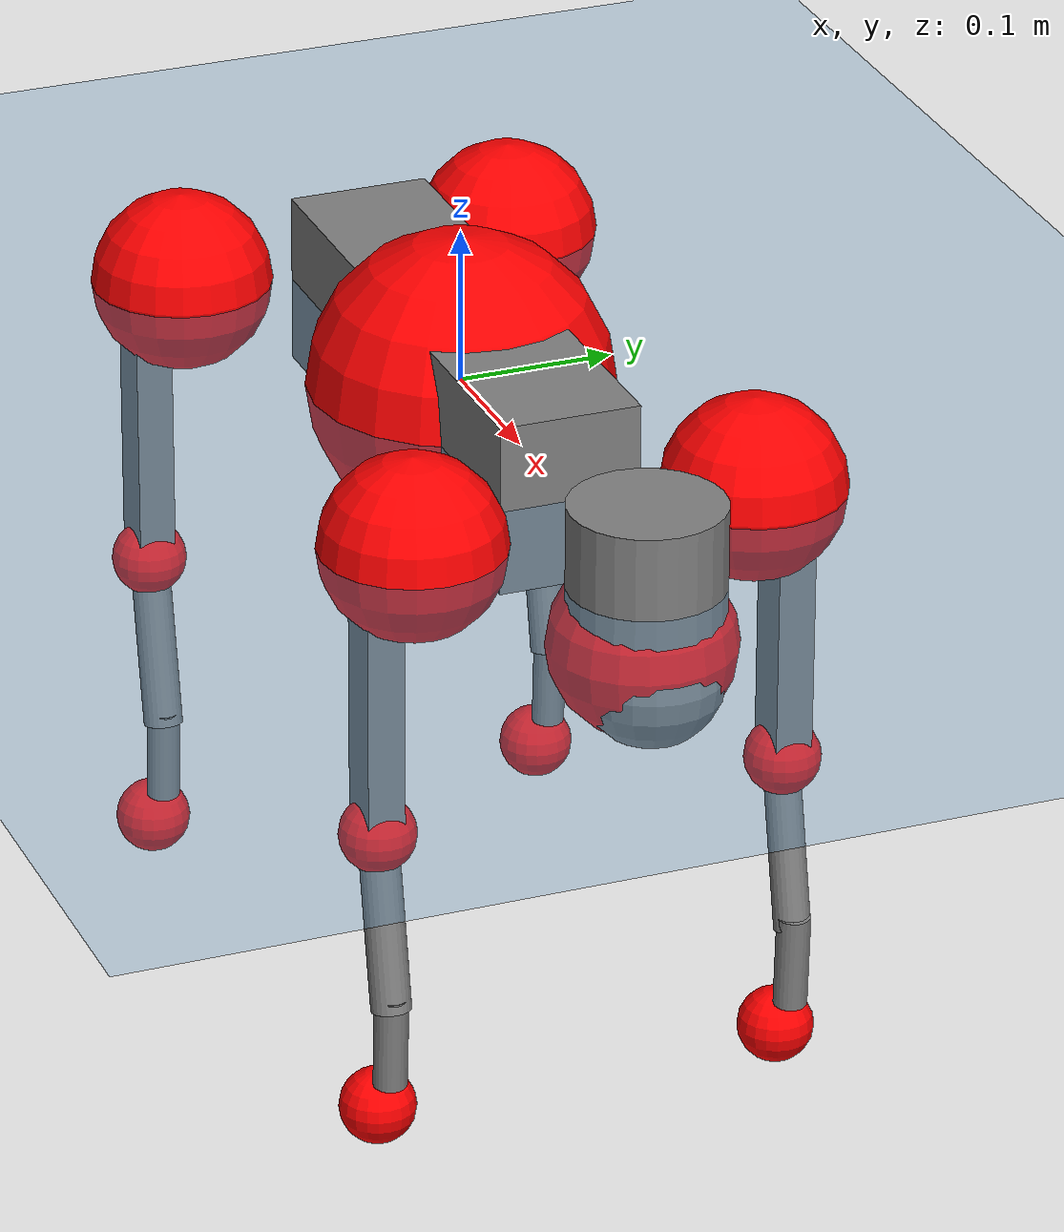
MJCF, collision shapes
<mujoco model="go2">
  <compiler angle="radian" assetdir="assets" balanceinertia="true" inertiafromgeom="false"/>

  <option timestep="0.005" density="1.2" viscosity="2e-05"/>

  <size nkey="1"/>

  <visual>
    <quality shadowsize="8192"/>
    <map shadowclip="0.5"/>
  </visual>

  <default>
    <default class="/">
      <geom contype="0" conaffinity="0" group="1" solref="-1000 -80"/>
      <site size="0.01 0.005 0.005" group="5"/>
      <general forcelimited="true" biastype="affine" gainprm="20" biasprm="0 -20 -0.5"/>
      <default class="go2">
        <joint armature="0.01" damping="0.01" frictionloss="0.2"/>
        <geom condim="1" margin="0.001"/>
        <default class="visual">
          <geom type="mesh" group="2"/>
        </default>
        <default class="collision">
          <geom group="3"/>
          <default class="foot">
            <geom size="0.022 0 0" condim="6" priority="1" friction="0.8 0.02 0.01" solimp="0.015 1 0.022"/>
          </default>
        </default>
        <default class="reward_collision_sphere">
          <geom group="5" rgba="1 0 0 1"/>
        </default>
      </default>
    </default>
  </default>

  <asset>
    <texture type="skybox" colorspace="auto" name="//unnamed_texture_0" builtin="gradient" rgb1="0.95 0.95 0.95" rgb2="0.95 0.95 0.95" width="100" height="600"/>
    <texture type="2d" colorspace="auto" name="texplane" builtin="checker" rgb1="0.345 0.575 0.748" rgb2="0.345 0.575 0.748" markrgb="1 1 1" width="512" height="512"/>
    <material name="MatPlane" class="/" texture="texplane" texuniform="true" texrepeat="2 2" specular="0.9"/>
    <material name="metal" class="/" rgba="0.9 0.95 0.95 1"/>
    <material name="black" class="/" rgba="0 0 0 1"/>
    <material name="white" class="/"/>
    <material name="gray" class="/" rgba="0.671705 0.692426 0.77427 1"/>
    <mesh name="base_0" class="/" file="base_0.obj"/>
    <mesh name="base_1" class="/" file="base_1.obj"/>
    <mesh name="base_2" class="/" file="base_2.obj"/>
    <mesh name="base_3" class="/" file="base_3.obj"/>
    <mesh name="base_4" class="/" file="base_4.obj"/>
    <mesh name="hip_0" class="/" file="hip_0.obj"/>
    <mesh name="hip_1" class="/" file="hip_1.obj"/>
    <mesh name="thigh_0" class="/" file="thigh_0.obj"/>
    <mesh name="thigh_1" class="/" file="thigh_1.obj"/>
    <mesh name="thigh_mirror_0" class="/" file="thigh_mirror_0.obj"/>
    <mesh name="thigh_mirror_1" class="/" file="thigh_mirror_1.obj"/>
    <mesh name="calf_0" class="/" file="calf_0.obj"/>
    <mesh name="calf_1" class="/" file="calf_1.obj"/>
    <mesh name="calf_mirror_0" class="/" file="calf_mirror_0.obj"/>
    <mesh name="calf_mirror_1" class="/" file="calf_mirror_1.obj"/>
    <mesh name="foot" class="/" file="foot.obj"/>
  </asset>

  <worldbody>
    <geom name="floor" class="/" size="100 100 0.125" type="plane" group="0" material="MatPlane"/>
    <light name="toplight_shadow" class="/" pos="0 0 5" dir="0.0990148 0.0990148 -0.990148" type="directional" ambient="0.04 0.04 0.04" diffuse="0.55 0.55 0.55" specular="0.12 0.12 0.12"/>
    <light name="toplight_fill" class="/" pos="0 0 5" dir="0.0990148 0.0990148 -0.990148" type="directional" castshadow="false" ambient="0.04 0.04 0.04" diffuse="0.3 0.3 0.3" specular="0.08 0.08 0.08"/>
    <body name="trunk" childclass="go2" pos="0.000126265 -2.33229e-05 -0.000620048" quat="1 -8.49036e-05 8.24717e-05 1.40954e-05">
      <inertial pos="0.0227263 -6.98061e-05 -0.00495967" quat="-0.000568138 0.713212 -0.00211275 0.700945" mass="6.424" diaginertia="0.146281 0.0760385 0.0142089"/>
      <joint name="//unnamed_joint_0" type="free" armature="0" damping="0" frictionloss="0"/>
      <geom name="//unnamed_geom_1" class="visual" material="black" mesh="base_0"/>
      <geom name="//unnamed_geom_2" class="visual" material="black" mesh="base_1"/>
      <geom name="//unnamed_geom_3" class="visual" material="black" mesh="base_2"/>
      <geom name="//unnamed_geom_4" class="visual" material="white" mesh="base_3"/>
      <geom name="//unnamed_geom_5" class="visual" material="gray" mesh="base_4"/>
      <geom name="trunk_1" class="collision" size="0.18232 0.0453135 0.0552485" type="box"/>
      <geom name="trunk_2" class="collision" size="0.0484636 0.0436173" pos="0.302802 0 0.00895753" type="cylinder"/>
      <geom name="trunk_3" class="collision" size="0.0455558" pos="0.311302 0 -0.0537452"/>
      <geom name="//unnamed_geom_9" class="reward_collision_sphere" size="0.0969272"/>
      <geom name="//unnamed_geom_10" class="reward_collision_sphere" size="0.0581563" pos="0.29749 0 -0.0403089"/>
      <site name="imu" pos="-0.0247678 -0.0044532 0.0408052" size="0.00969272"/>
      <camera name="track" pos="0 -1.8992 0" quat="0.707107 0.707107 0 0" mode="trackcom"/>
      <camera name="ego_camera" pos="0.331488 0 0.0403089" quat="-0.5 -0.5 0.5 0.5"/>
      <body name="FL_hip" pos="0.205153 0.0433437 0.00106207" quat="1 0.000161652 -0.000179062 9.24128e-06">
        <inertial pos="-0.00550253 0.00222425 -0.00124437" quat="0.497182 0.500953 0.505543 0.496269" mass="0.623657" diaginertia="0.00119902 0.000463743 0.000279616"/>
        <joint name="FL_hip_joint" pos="0 0 0" axis="1 0.000577446 0.000302049" stiffness="0.00184315" range="-1.04645 1.03303" armature="0.00968672" damping="0.00737734" frictionloss="0.185989"/>
        <geom name="//unnamed_geom_11" class="visual" material="metal" mesh="hip_0"/>
        <geom name="//unnamed_geom_12" class="visual" material="gray" mesh="hip_1"/>
        <geom name="//unnamed_geom_13" class="collision" size="0.0445865 0.0193854" pos="0 0.0759681 0" quat="0.707107 0.707107 0 0" type="cylinder"/>
        <geom name="//unnamed_geom_14" class="reward_collision_sphere" size="0.0581563" pos="0 0.0664721 0"/>
        <body name="FL_thigh" pos="-0.0003029 0.0897625 0.00178994" quat="1 -0.000147525 -0.000148645 4.12677e-05">
          <inertial pos="-0.00370453 -0.021025 -0.0288515" quat="0.829256 0.0850034 -0.0200147 0.552004" mass="1.05744" diaginertia="0.00812178 0.00451938 0.000510843"/>
          <joint name="FL_thigh_joint" pos="0 0 0" axis="0.00335 0.999978 0.00569948" stiffness="0.00307256" range="-1.55296 3.49023" armature="0.0100174" damping="0.0032718" frictionloss="0.194086"/>
          <geom name="//unnamed_geom_15" class="visual" material="metal" mesh="thigh_0"/>
          <geom name="//unnamed_geom_16" class="visual" material="gray" mesh="thigh_1"/>
          <geom name="//unnamed_geom_17" class="collision" size="0.103228 0.0118736 0.0164776" pos="0 0 -0.0953977" quat="0.707107 0 0.707107 0" type="box"/>
          <body name="FL_calf" pos="-0.000938398 5.31438e-05 -0.190515" quat="1 -1.1614e-06 -1.57117e-05 4.09502e-06">
            <inertial pos="0.00569993 -0.000734344 -0.126521" quat="0.710202 0.00237285 -0.00523786 0.703974" mass="0.220558" diaginertia="0.00201729 0.00113034 3.06904e-05"/>
            <joint name="FL_calf_joint" pos="0 0 0" axis="0.00078435 0.999995 -0.0029583" stiffness="0.00497788" range="-2.74563 -0.855642" armature="0.00946237" damping="0.00807692" frictionloss="0.201422"/>
            <geom name="//unnamed_geom_18" class="visual" material="gray" mesh="calf_0"/>
            <geom name="//unnamed_geom_19" class="visual" material="black" mesh="calf_1"/>
            <geom name="FL_calf0" class="collision" size="0.0116313 0.0581563" pos="0.0084997 0 -0.0537452" quat="0.994493 0 -0.104807 0" type="cylinder"/>
            <geom name="//unnamed_geom_21" class="collision" size="0.010662 0.0315014" pos="0.0212493 0 -0.132571" quat="0.999688 0 0.0249974 0" type="cylinder"/>
            <geom name="//unnamed_geom_22" class="visual" pos="0 0 -0.190795" quat="1 0 0 0" material="black" mesh="foot"/>
            <geom name="FL_foot" class="foot" size="0.0175763" pos="-0.00212493 0 -0.190795"/>
            <geom name="//unnamed_geom_24" class="reward_collision_sphere" size="0.0242318"/>
            <geom name="//unnamed_geom_25" class="reward_collision_sphere" size="0.0242318" pos="-0.00212493 0 -0.190795"/>
            <site name="FL_foot" class="foot" pos="-0.00212493 0 -0.190795" size="0.00969272"/>
          </body>
        </body>
      </body>
      <body name="FR_hip" pos="0.205891 -0.0435374 -0.000201386" quat="1 -0.000237548 0.000369005 -0.00016529">
        <inertial pos="-0.00562633 -0.00156378 -0.000627655" quat="0.500098 0.506457 0.499157 0.494212" mass="0.621696" diaginertia="0.00120128 0.000458723 0.000277117"/>
        <joint name="FR_hip_joint" pos="0 0 0" axis="0.999998 -0.00113311 -0.00157158" range="-1.05966 1.06676" armature="0.00987623" damping="0.0148073" frictionloss="0.185324"/>
        <geom name="//unnamed_geom_26" class="visual" pos="0 4.691e-10 2.01207e-08" quat="4.63268e-05 1 0 0" material="metal" mesh="hip_0"/>
        <geom name="//unnamed_geom_27" class="visual" pos="0 7.60468e-10 -4.97661e-08" quat="4.63268e-05 1 0 0" material="gray" mesh="hip_1"/>
        <geom name="//unnamed_geom_28" class="collision" size="0.0445865 0.0193854" pos="0 -0.0759681 0" quat="0.707107 0.707107 0 0" type="cylinder"/>
        <geom name="//unnamed_geom_29" class="reward_collision_sphere" size="0.0581563" pos="0 -0.0664721 0"/>
        <body name="FR_thigh" pos="0.00015612 -0.0897233 0.00171108" quat="1 -8.92576e-05 -0.000281073 -0.000137427">
          <inertial pos="-0.00409285 0.0212052 -0.0289213" quat="0.55205 -0.0194564 0.0835113 0.82939" mass="1.03947" diaginertia="0.00802733 0.00453067 0.000502738"/>
          <joint name="FR_thigh_joint" pos="0 0 0" axis="0.00594313 -0.999982 -0.000278222" range="-3.49249 1.58765" armature="0.00996643" damping="0.00794911" frictionloss="0.199302"/>
          <geom name="//unnamed_geom_30" class="visual" material="metal" mesh="thigh_mirror_0"/>
          <geom name="//unnamed_geom_31" class="visual" material="gray" mesh="thigh_mirror_1"/>
          <geom name="//unnamed_geom_32" class="collision" size="0.103228 0.0118736 0.0164776" pos="0 0 -0.0953977" quat="0.707107 0 0.707107 0" type="box"/>
          <body name="FR_calf" pos="-0.000460868 0.000370458 -0.190937" quat="1 9.65104e-05 2.46643e-05 -0.000225637">
            <inertial pos="0.00612889 0.000631353 -0.127273" quat="0.70588 -0.00620555 0.00380692 0.708294" mass="0.21835" diaginertia="0.0020212 0.00112616 3.09272e-05"/>
            <joint name="FR_calf_joint" pos="0 0 0" axis="0.000990689 -0.999994 0.00323248" range="0.834095 2.72578" armature="0.00971108" damping="0.00635052" frictionloss="0.201009"/>
            <geom name="//unnamed_geom_33" class="visual" material="gray" mesh="calf_mirror_0"/>
            <geom name="//unnamed_geom_34" class="visual" material="black" mesh="calf_mirror_1"/>
            <geom name="FR_calf0" class="collision" size="0.0126005 0.0581563" pos="0.0106246 0 -0.0537452" quat="0.995004 0 -0.0998334 0" type="cylinder"/>
            <geom name="//unnamed_geom_36" class="collision" size="0.010662 0.0315014" pos="0.0212493 0 -0.132571" quat="0.999688 0 0.0249974 0" type="cylinder"/>
            <geom name="//unnamed_geom_37" class="visual" pos="0 0 -0.190795" quat="1 0 0 0" material="black" mesh="foot"/>
            <geom name="FR_foot" class="foot" size="0.0212949" pos="-0.00212493 0 -0.190795"/>
            <geom name="//unnamed_geom_39" class="reward_collision_sphere" size="0.0242318"/>
            <geom name="//unnamed_geom_40" class="reward_collision_sphere" size="0.0242318" pos="-0.00212493 0 -0.190795"/>
            <site name="FR_foot" class="foot" pos="-0.00212493 0 -0.190795" size="0.00969272"/>
          </body>
        </body>
      </body>
      <body name="RL_hip" pos="-0.205854 0.0448579 0.000641883" quat="1 -3.1614e-05 1.31555e-05 -4.34364e-05">
        <inertial pos="0.00551281 0.00236191 -0.000612736" quat="0.504357 0.499353 0.496887 0.499374" mass="0.624499" diaginertia="0.00122075 0.000463233 0.000282023"/>
        <joint name="RL_hip_joint" pos="0 0 0" axis="-0.999797 -0.0187957 0.0072598" stiffness="0.00337566" range="-1.04579 1.04862" armature="0.00955151" damping="0.0121993" frictionloss="0.195098"/>
        <geom name="//unnamed_geom_41" class="visual" pos="-1.4523e-09 0 -2.84685e-07" quat="4.63268e-05 0 1 0" material="metal" mesh="hip_0"/>
        <geom name="//unnamed_geom_42" class="visual" pos="-2.35436e-09 0 -2.52475e-07" quat="4.63268e-05 0 1 0" material="gray" mesh="hip_1"/>
        <geom name="//unnamed_geom_43" class="collision" size="0.0445865 0.0193854" pos="0 0.0759681 0" quat="0.707107 0.707107 0 0" type="cylinder"/>
        <geom name="//unnamed_geom_44" class="reward_collision_sphere" size="0.0581563" pos="0 0.0664721 0"/>
        <body name="RL_thigh" pos="0.000171669 0.0899433 0.000836809" quat="1 6.03525e-05 -0.000111264 0.000333794">
          <inertial pos="-0.00297519 -0.0202232 -0.0300798" quat="0.829635 0.0847351 -0.0199968 0.551476" mass="1.06651" diaginertia="0.00818731 0.00458557 0.000508151"/>
          <joint name="RL_thigh_joint" pos="0 0 0" axis="0.00665219 0.999972 0.00340857" range="-0.505631 4.53594" armature="0.00963961" damping="0.00117893" frictionloss="0.188011"/>
          <geom name="//unnamed_geom_45" class="visual" material="metal" mesh="thigh_0"/>
          <geom name="//unnamed_geom_46" class="visual" material="gray" mesh="thigh_1"/>
          <geom name="//unnamed_geom_47" class="collision" size="0.103228 0.0118736 0.0164776" pos="0 0 -0.0953977" quat="0.707107 0 0.707107 0" type="box"/>
          <body name="RL_calf" pos="0.000319068 -0.00102433 -0.190255" quat="1 6.9889e-05 -0.000302843 -0.000246254">
            <inertial pos="0.00613355 -0.00117465 -0.127565" quat="0.710684 0.00149593 -0.00483788 0.703494" mass="0.221162" diaginertia="0.00203857 0.00115238 3.07572e-05"/>
            <joint name="RL_calf_joint" pos="0 0 0" axis="0.00923301 0.999945 -0.00495908" range="-2.71602 -0.857868" armature="0.00968978" damping="0" frictionloss="0.194697"/>
            <geom name="//unnamed_geom_48" class="visual" material="gray" mesh="calf_0"/>
            <geom name="//unnamed_geom_49" class="visual" material="black" mesh="calf_1"/>
            <geom name="RL_calf0" class="collision" size="0.0126005 0.0581563" pos="0.0106246 0 -0.0537452" quat="0.995004 0 -0.0998334 0" type="cylinder"/>
            <geom name="//unnamed_geom_51" class="collision" size="0.010662 0.0315014" pos="0.0212493 0 -0.132571" quat="0.999688 0 0.0249974 0" type="cylinder"/>
            <geom name="//unnamed_geom_52" class="visual" pos="0 0 -0.190795" quat="1 0 0 0" material="black" mesh="foot"/>
            <geom name="RL_foot" class="foot" size="0.0188752" pos="-0.00212493 0 -0.190795"/>
            <geom name="//unnamed_geom_54" class="reward_collision_sphere" size="0.0242318"/>
            <geom name="//unnamed_geom_55" class="reward_collision_sphere" size="0.0242318" pos="-0.00212493 0 -0.190795"/>
            <site name="RL_foot" class="foot" pos="-0.00212493 0 -0.190795" size="0.00969272"/>
          </body>
        </body>
      </body>
      <body name="RR_hip" pos="-0.204853 -0.0452642 0.000968256" quat="1 -1.2068e-05 5.92329e-05 6.52595e-05">
        <inertial pos="0.00624358 -0.000996206 -0.00016875" quat="0.499203 0.497023 0.498749 0.50499" mass="0.613975" diaginertia="0.00121147 0.00046434 0.000276087"/>
        <joint name="RR_hip_joint" pos="0 0 0" axis="-0.999989 -0.00403466 0.00258794" range="-1.03542 1.04691" armature="0.00969058" damping="0.00178898" frictionloss="0.202807"/>
        <geom name="//unnamed_geom_56" class="visual" pos="1.4484e-09 4.691e-10 -3.04806e-07" quat="2.14617e-09 4.63268e-05 4.63268e-05 -1" material="metal" mesh="hip_0"/>
        <geom name="//unnamed_geom_57" class="visual" pos="2.36402e-09 7.60468e-10 -2.02709e-07" quat="2.14617e-09 4.63268e-05 4.63268e-05 -1" material="gray" mesh="hip_1"/>
        <geom name="//unnamed_geom_58" class="collision" size="0.0445865 0.0193854" pos="0 -0.0759681 0" quat="0.707107 0.707107 0 0" type="cylinder"/>
        <geom name="//unnamed_geom_59" class="reward_collision_sphere" size="0.0581563" pos="0 -0.0664721 0"/>
        <body name="RR_thigh" pos="-0.000370921 -0.0915884 -0.00137978" quat="1 -0.000306016 -0.000133022 -0.000359292">
          <inertial pos="-0.00369721 0.0217809 -0.0305207" quat="0.551212 -0.0186797 0.0807143 0.830242" mass="1.03625" diaginertia="0.00801881 0.00449196 0.000508828"/>
          <joint name="RR_thigh_joint" pos="0 0 0" axis="0.000194381 -1 0.000199235" range="-4.54061 0.537555" armature="0.0097498" damping="0.0210396" frictionloss="0.190273"/>
          <geom name="//unnamed_geom_60" class="visual" material="metal" mesh="thigh_mirror_0"/>
          <geom name="//unnamed_geom_61" class="visual" material="gray" mesh="thigh_mirror_1"/>
          <geom name="//unnamed_geom_62" class="collision" size="0.103228 0.0118736 0.0164776" pos="0 0 -0.0953977" quat="0.707107 0 0.707107 0" type="box"/>
          <body name="RR_calf" pos="0.000916137 -0.000773969 -0.191816" quat="1 -0.00033234 9.0682e-05 -0.000221924">
            <inertial pos="0.00669909 0.000824544 -0.127052" quat="0.703074 -0.00464296 0.00172389 0.7111" mass="0.215988" diaginertia="0.00198516 0.001106 3.02011e-05"/>
            <joint name="RR_calf_joint" pos="0 0 0" axis="0.00457109 -0.999972 -0.00585521" range="0.835661 2.71744" armature="0.0097401" damping="0.00735464" frictionloss="0.190832"/>
            <geom name="//unnamed_geom_63" class="visual" material="gray" mesh="calf_mirror_0"/>
            <geom name="//unnamed_geom_64" class="visual" material="black" mesh="calf_mirror_1"/>
            <geom name="RR_calf0" class="collision" size="0.0126005 0.0581563" pos="0.0106246 0 -0.0537452" quat="0.995004 0 -0.0998334 0" type="cylinder"/>
            <geom name="//unnamed_geom_66" class="collision" size="0.010662 0.0315014" pos="0.0212493 0 -0.132571" quat="0.999688 0 0.0249974 0" type="cylinder"/>
            <geom name="//unnamed_geom_67" class="visual" pos="0 0 -0.190795" quat="1 0 0 0" material="black" mesh="foot"/>
            <geom name="RR_foot" class="foot" size="0.0222839" pos="-0.00212493 0 -0.190795"/>
            <geom name="//unnamed_geom_69" class="reward_collision_sphere" size="0.0242318"/>
            <geom name="//unnamed_geom_70" class="reward_collision_sphere" size="0.0242318" pos="-0.00212493 0 -0.190795"/>
            <site name="RR_foot" class="foot" pos="-0.00212493 0 -0.190795" size="0.00969272"/>
          </body>
        </body>
      </body>
    </body>
  </worldbody>

  <contact>
    <pair class="/" geom1="floor" geom2="FL_foot" name="//unnamed_contact_0"/>
    <pair class="/" geom1="floor" geom2="FR_foot" name="//unnamed_contact_1"/>
    <pair class="/" geom1="floor" geom2="RL_foot" name="//unnamed_contact_2"/>
    <pair class="/" geom1="floor" geom2="RR_foot" name="//unnamed_contact_3"/>
  </contact>

  <actuator>
    <general name="FL_hip" class="/" joint="FL_hip_joint" forcerange="-22.9186 22.9186" gainprm="19.7159" biasprm="0 -19.7159 -0.484096"/>
    <general name="FL_thigh" class="/" joint="FL_thigh_joint" forcerange="-23.3326 23.3326" gainprm="19.7159" biasprm="0 -19.7159 -0.484096"/>
    <general name="FL_calf" class="/" joint="FL_calf_joint" forcerange="-42.3797 42.3797" gainprm="19.7159" biasprm="0 -19.7159 -0.484096"/>
    <general name="FR_hip" class="/" joint="FR_hip_joint" forcerange="-22.5577 22.5577" gainprm="19.7159" biasprm="0 -19.7159 -0.484096"/>
    <general name="FR_thigh" class="/" joint="FR_thigh_joint" forcerange="-22.1622 22.1622" gainprm="19.7159" biasprm="0 -19.7159 -0.484096"/>
    <general name="FR_calf" class="/" joint="FR_calf_joint" forcerange="-43.5672 43.5672" gainprm="19.7159" biasprm="0 -19.7159 -0.484096"/>
    <general name="RL_hip" class="/" joint="RL_hip_joint" forcerange="-22.8297 22.8297" gainprm="19.7159" biasprm="0 -19.7159 -0.484096"/>
    <general name="RL_thigh" class="/" joint="RL_thigh_joint" forcerange="-22.5519 22.5519" gainprm="19.7159" biasprm="0 -19.7159 -0.484096"/>
    <general name="RL_calf" class="/" joint="RL_calf_joint" forcerange="-43.9669 43.9669" gainprm="19.7159" biasprm="0 -19.7159 -0.484096"/>
    <general name="RR_hip" class="/" joint="RR_hip_joint" forcerange="-22.9288 22.9288" gainprm="19.7159" biasprm="0 -19.7159 -0.484096"/>
    <general name="RR_thigh" class="/" joint="RR_thigh_joint" forcerange="-23.0732 23.0732" gainprm="19.7159" biasprm="0 -19.7159 -0.484096"/>
    <general name="RR_calf" class="/" joint="RR_calf_joint" forcerange="-42.6923 42.6923" gainprm="19.7159" biasprm="0 -19.7159 -0.484096"/>
  </actuator>

  <sensor>
    <gyro site="imu" name="imu_angular_velocity"/>
    <velocimeter site="imu" name="imu_linear_velocity"/>
    <framelinvel objtype="site" objname="FL_foot" name="FL_foot_global_linear_velocity"/>
    <framelinvel objtype="site" objname="FR_foot" name="FR_foot_global_linear_velocity"/>
    <framelinvel objtype="site" objname="RL_foot" name="RL_foot_global_linear_velocity"/>
    <framelinvel objtype="site" objname="RR_foot" name="RR_foot_global_linear_velocity"/>
  </sensor>

  <keyframe>
    <key name="home" qpos="0 0 0.325 1 0 0 0 0.1 0.8 -1.5 -0.1 -0.8 1.5 -0.1 0.8 -1.5 0.1 -0.8 1.5"/>
  </keyframe>
</mujoco>
